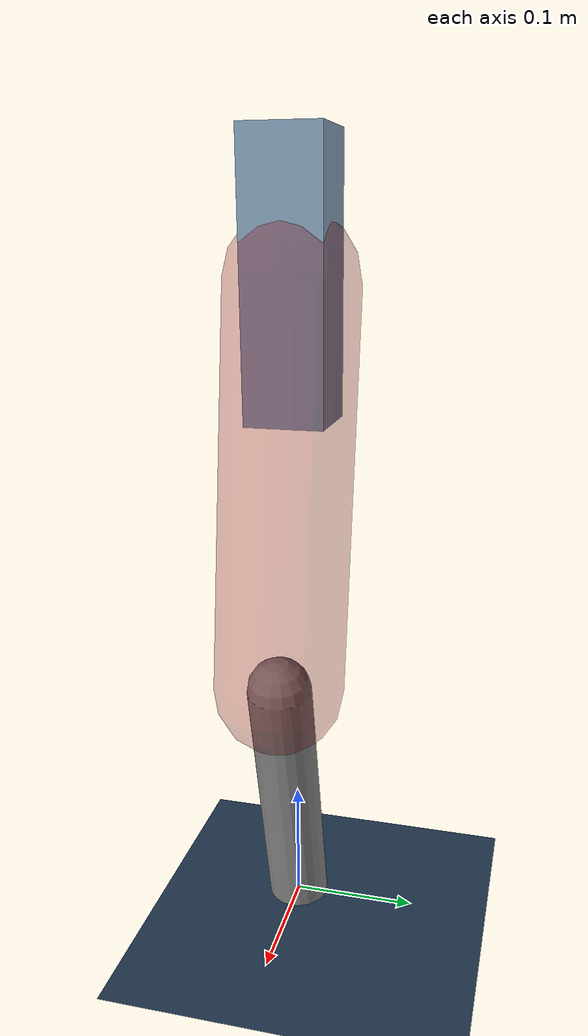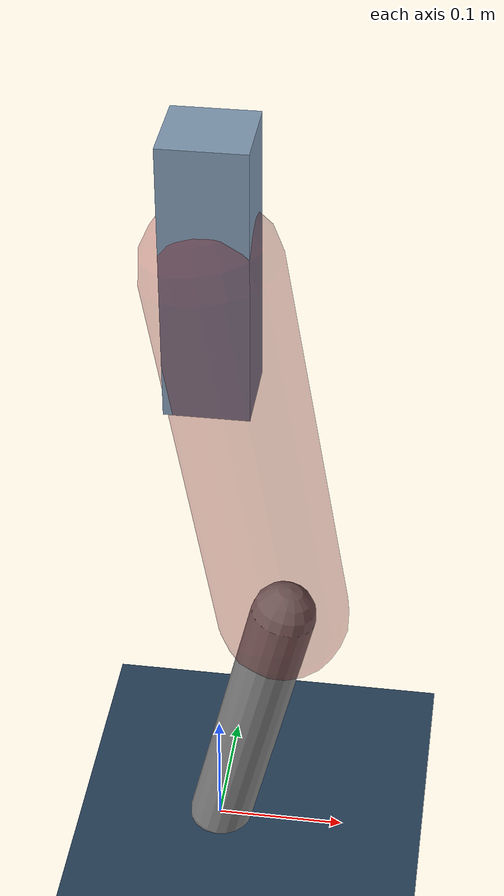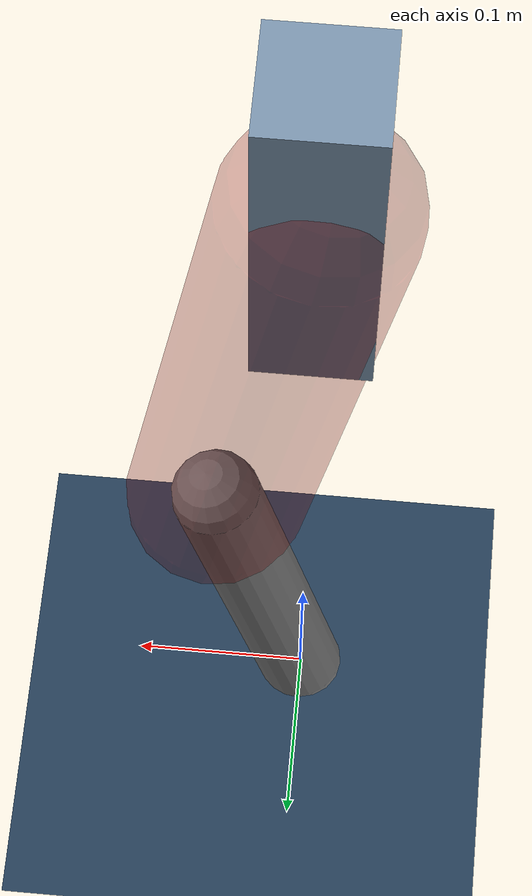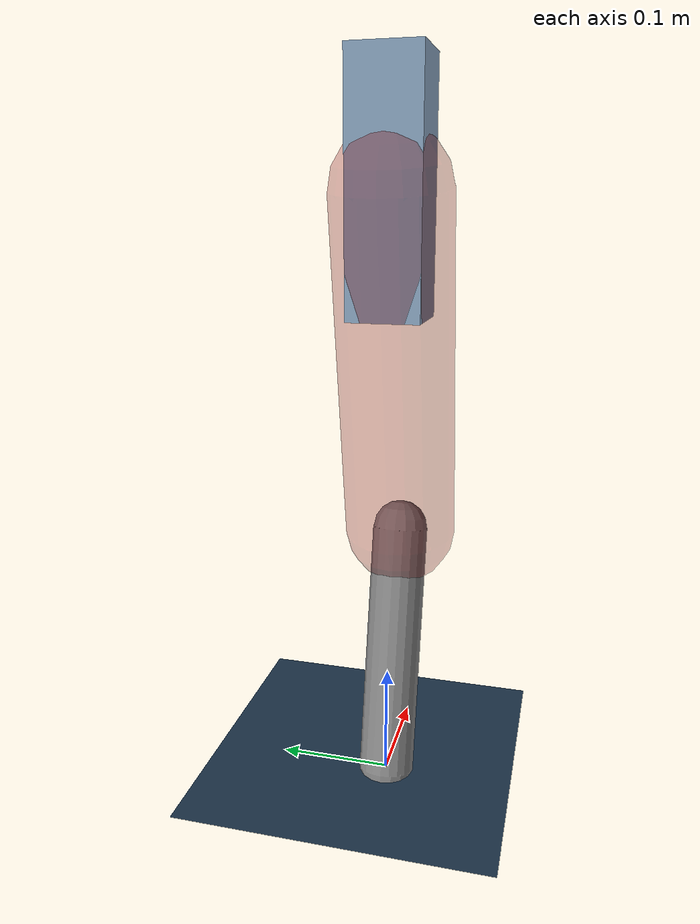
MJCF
<mujoco model="Hopper2D">
	<compiler inertiafromgeom="true" angle="radian" />
	<option timestep="0.001" integrator="implicit" cone="elliptic" solver="Newton" tolerance="1e-10" />

	<default>
		<geom contype="1" conaffinity="1" condim="3" friction="2 0.005 0.0001" solref="0.005 1" />
		<joint limited="true" damping="0.1" />
	</default>

	<asset>
		<texture name="skybox" type="skybox" builtin="gradient" rgb1=".4 .6 .8" rgb2="0 0 0" width="800" height="800" />
		<texture name="grid" type="2d" builtin="checker" rgb1=".1 .2 .3" rgb2=".2 .3 .4" width="300" height="300" mark="edge" markrgb=".2 .3 .4" />
		<material name="ground" texture="grid" texrepeat="1 1" texuniform="true" reflectance="0.1" />
		<material name="leg" rgba="0.5 0.6 0.7 1" />
	</asset>

	<worldbody>

		<geom name="floor" type="plane" size="5 5 0.25" material="ground" />

		<light directional="false" diffuse="0.8 0.8 0.8" specular="0.3 0.3 0.3" pos="0 0 2" dir="0 0 -1" />
		<light mode="targetbodycom" target="base" directional="false" diffuse="0.8 0.8 0.8" specular="0.3 0.3 0.3" pos="0 0 2" dir="0 0 -1" />

		<camera name="fixed" pos="0 -2 1" xyaxes="1 0 0 0 0 1" />
		<camera name="tracking" mode="trackcom" pos="0 -3 1" />

		<body name="root" pos="0 0 0.5181349076394309">
			<joint name="slide_x" type="slide" axis="1 0 0" range="-100 100" />
			<joint name="slide_z" type="slide" axis="0 0 1" range="0 10" />

			<body name="base" pos="0 0 0">
				<geom name="torso" type="box" size="0.03 0.03 0.1" mass="2.98" material="leg" />

				<body name="link1" pos="0 0 0" euler="0 1.4017283115516994 0">
					<joint type="hinge" axis="0 -1 0" pos="0 0 0" name="hinge1" limited="true" range="-3.14 3.14" stiffness="0" damping="0.1" />
					<geom name="thigh" type="capsule" fromto="0 0 0 0.30086734611892196 0 0" size="0.05" rgba="0.5 0 0 0.3" mass="0.9910418345210893" />

					<body name="link2" pos="0.30086734611892196 0 0" euler="0 0.3937079208399825 0">
						<joint type="hinge" axis="0 -1 0" pos="0 0 0" name="hinge2" limited="true" range="-3.14 3.14" stiffness="0" damping="0.1" />
						<geom name="shank" type="capsule" fromto="0 0 0 0.22726756152050898 0 0" size="0.025" mass="0.42371404921640715" />

					</body>
				</body>
			</body>
		</body>
	</worldbody>

	<actuator>
		<motor name="torque1" joint="hinge1" ctrlrange="-86.22909534287032 86.22909534287032" ctrllimited="true" gear="1" />
		<motor name="torque2" joint="hinge2" ctrlrange="-124.15213603737692 124.15213603737692" ctrllimited="true" gear="1" />
	</actuator>
</mujoco>
